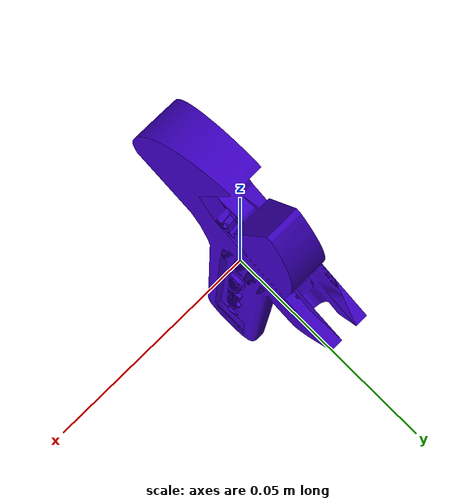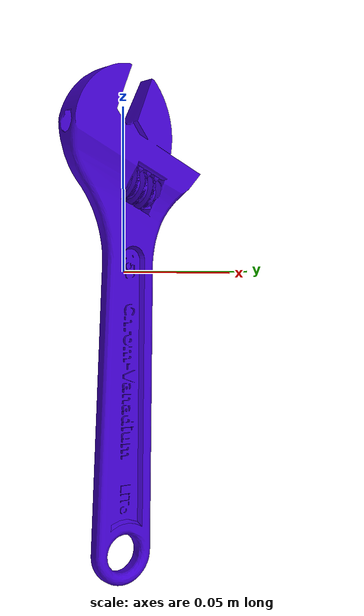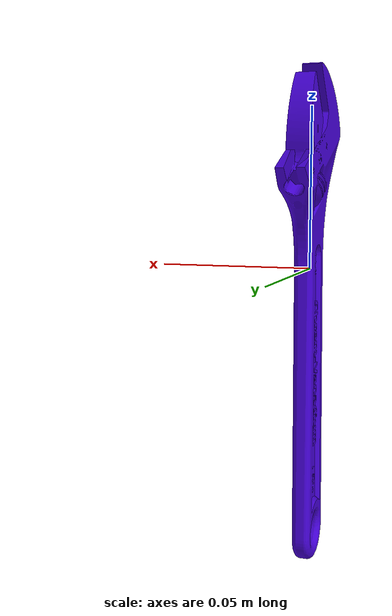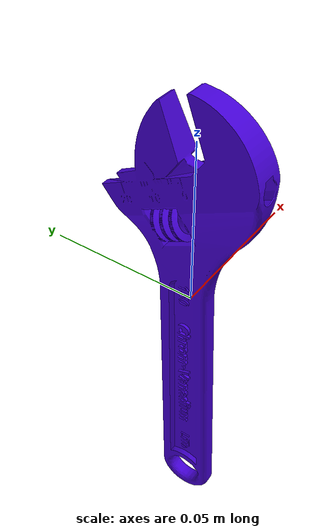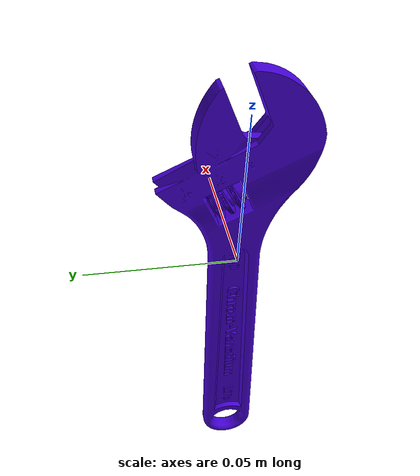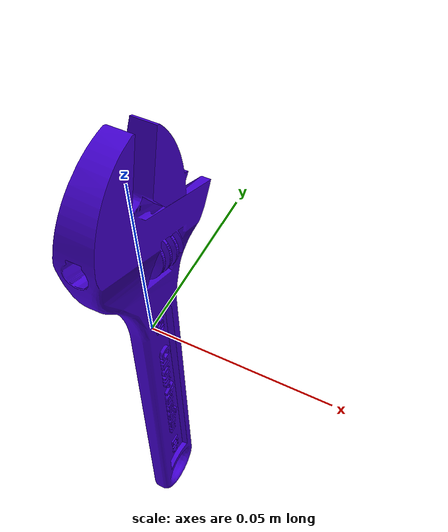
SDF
<?xml version="1.0"?>
<sdf version="1.7">
  <model name="adjustable_wrench_150mm_bright">
    <pose>0 0 0 0 0 0</pose>
    <static>false</static>
    <link name="link">
      <!-- link frame = tool CoM; Z = long axis (+ toward tool end), X = forward, Y = Z x X -->
      <inertial>
        <pose>0 0 0 0 0 0</pose>
        <mass>0.143754</mass>
        <inertia>
          <ixx>2.951742e-04</ixx>
          <ixy>-1.046015e-11</ixy>
          <ixz>2.289810e-11</ixz>
          <iyy>2.854696e-04</iyy>
          <iyz>1.461301e-09</iyz>
          <izz>1.091046e-05</izz>
        </inertia>
      </inertial>
      <collision name="collision">
        <geometry>
          <mesh>
            <uri>model://adjustable_wrench_150mm/meshes/adjustable_wrench_150mm.dae</uri>
          </mesh>
        </geometry>
      </collision>
      <visual name="visual">
        <geometry>
          <mesh>
            <uri>model://adjustable_wrench_150mm/meshes/adjustable_wrench_150mm.dae</uri>
          </mesh>
        </geometry>
        <material>
          <ambient>0.118 0.000 0.369 1.0</ambient>
          <diffuse>0.262 0.000 0.820 1.0</diffuse>
          <specular>0.85 0.85 0.85 1.0</specular>
          <emissive>0 0 0 1.0</emissive>
        </material>
      </visual>
    </link>
  </model>
</sdf>
